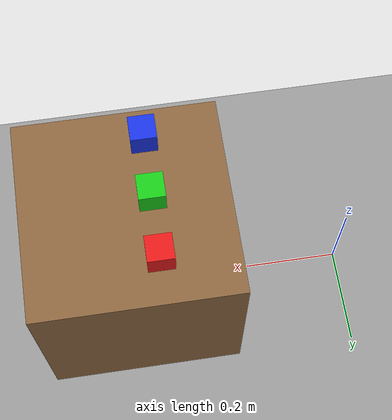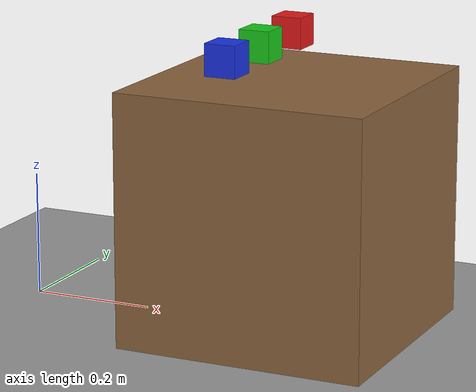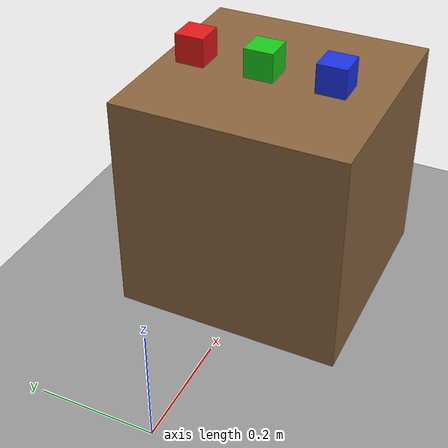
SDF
<?xml version="1.0" ?>
<sdf version="1.9">
  <world name="inspection_world">

    <physics name="1ms" type="ignored">
      <max_step_size>0.001</max_step_size>
      <real_time_factor>1.0</real_time_factor>
    </physics>

    <plugin filename="gz-sim-physics-system" name="gz::sim::systems::Physics"/>
    <plugin filename="gz-sim-user-commands-system" name="gz::sim::systems::UserCommands"/>
    <plugin filename="gz-sim-scene-broadcaster-system" name="gz::sim::systems::SceneBroadcaster"/>
    <plugin filename="gz-sim-contact-system" name="gz::sim::systems::Contact"/>

    <light type="directional" name="sun">
      <cast_shadows>true</cast_shadows>
      <pose>0 0 10 0 0 0</pose>
      <diffuse>0.8 0.8 0.8 1</diffuse>
      <specular>0.2 0.2 0.2 1</specular>
      <direction>-0.5 0.1 -0.9</direction>
    </light>

    <model name="ground_plane">
      <static>true</static>
      <link name="link">
        <collision name="collision">
          <geometry><plane><normal>0 0 1</normal><size>100 100</size></plane></geometry>
        </collision>
        <visual name="visual">
          <geometry><plane><normal>0 0 1</normal><size>100 100</size></plane></geometry>
          <material>
            <ambient>0.6 0.6 0.6 1</ambient>
            <diffuse>0.6 0.6 0.6 1</diffuse>
          </material>
        </visual>
      </link>
    </model>

    <!-- Inspection table, positioned in front of the arm base, within reach -->
    <model name="inspection_table">
      <static>true</static>
      <pose>0.45 0 0.2 0 0 0</pose>
      <link name="link">
        <collision name="collision">
          <geometry><box><size>0.4 0.4 0.4</size></box></geometry>
        </collision>
        <visual name="visual">
          <geometry><box><size>0.4 0.4 0.4</size></box></geometry>
          <material>
            <ambient>0.55 0.4 0.25 1</ambient>
            <diffuse>0.55 0.4 0.25 1</diffuse>
          </material>
        </visual>
      </link>
    </model>

    <!-- Inspection objects on the table, spaced apart for a perception pipeline to distinguish -->
    <model name="inspection_object_red">
      <pose>0.4 0.12 0.45 0 0 0</pose>
      <link name="link">
        <inertial><mass>0.05</mass><inertia><ixx>0.0001</ixx><iyy>0.0001</iyy><izz>0.0001</izz><ixy>0</ixy><ixz>0</ixz><iyz>0</iyz></inertia></inertial>
        <collision name="collision">
          <geometry><box><size>0.05 0.05 0.05</size></box></geometry>
        </collision>
        <visual name="visual">
          <geometry><box><size>0.05 0.05 0.05</size></box></geometry>
          <material><ambient>0.9 0.1 0.1 1</ambient><diffuse>0.9 0.1 0.1 1</diffuse></material>
        </visual>
      </link>
    </model>

    <model name="inspection_object_green">
      <pose>0.4 0 0.45 0 0 0</pose>
      <link name="link">
        <inertial><mass>0.05</mass><inertia><ixx>0.0001</ixx><iyy>0.0001</iyy><izz>0.0001</izz><ixy>0</ixy><ixz>0</ixz><iyz>0</iyz></inertia></inertial>
        <collision name="collision">
          <geometry><box><size>0.05 0.05 0.05</size></box></geometry>
        </collision>
        <visual name="visual">
          <geometry><box><size>0.05 0.05 0.05</size></box></geometry>
          <material><ambient>0.1 0.8 0.1 1</ambient><diffuse>0.1 0.8 0.1 1</diffuse></material>
        </visual>
      </link>
    </model>

    <model name="inspection_object_blue">
      <pose>0.4 -0.12 0.45 0 0 0</pose>
      <link name="link">
        <inertial><mass>0.05</mass><inertia><ixx>0.0001</ixx><iyy>0.0001</iyy><izz>0.0001</izz><ixy>0</ixy><ixz>0</ixz><iyz>0</iyz></inertia></inertial>
        <collision name="collision">
          <geometry><box><size>0.05 0.05 0.05</size></box></geometry>
        </collision>
        <visual name="visual">
          <geometry><box><size>0.05 0.05 0.05</size></box></geometry>
          <material><ambient>0.1 0.2 0.9 1</ambient><diffuse>0.1 0.2 0.9 1</diffuse></material>
        </visual>
      </link>
    </model>

  </world>
</sdf>
